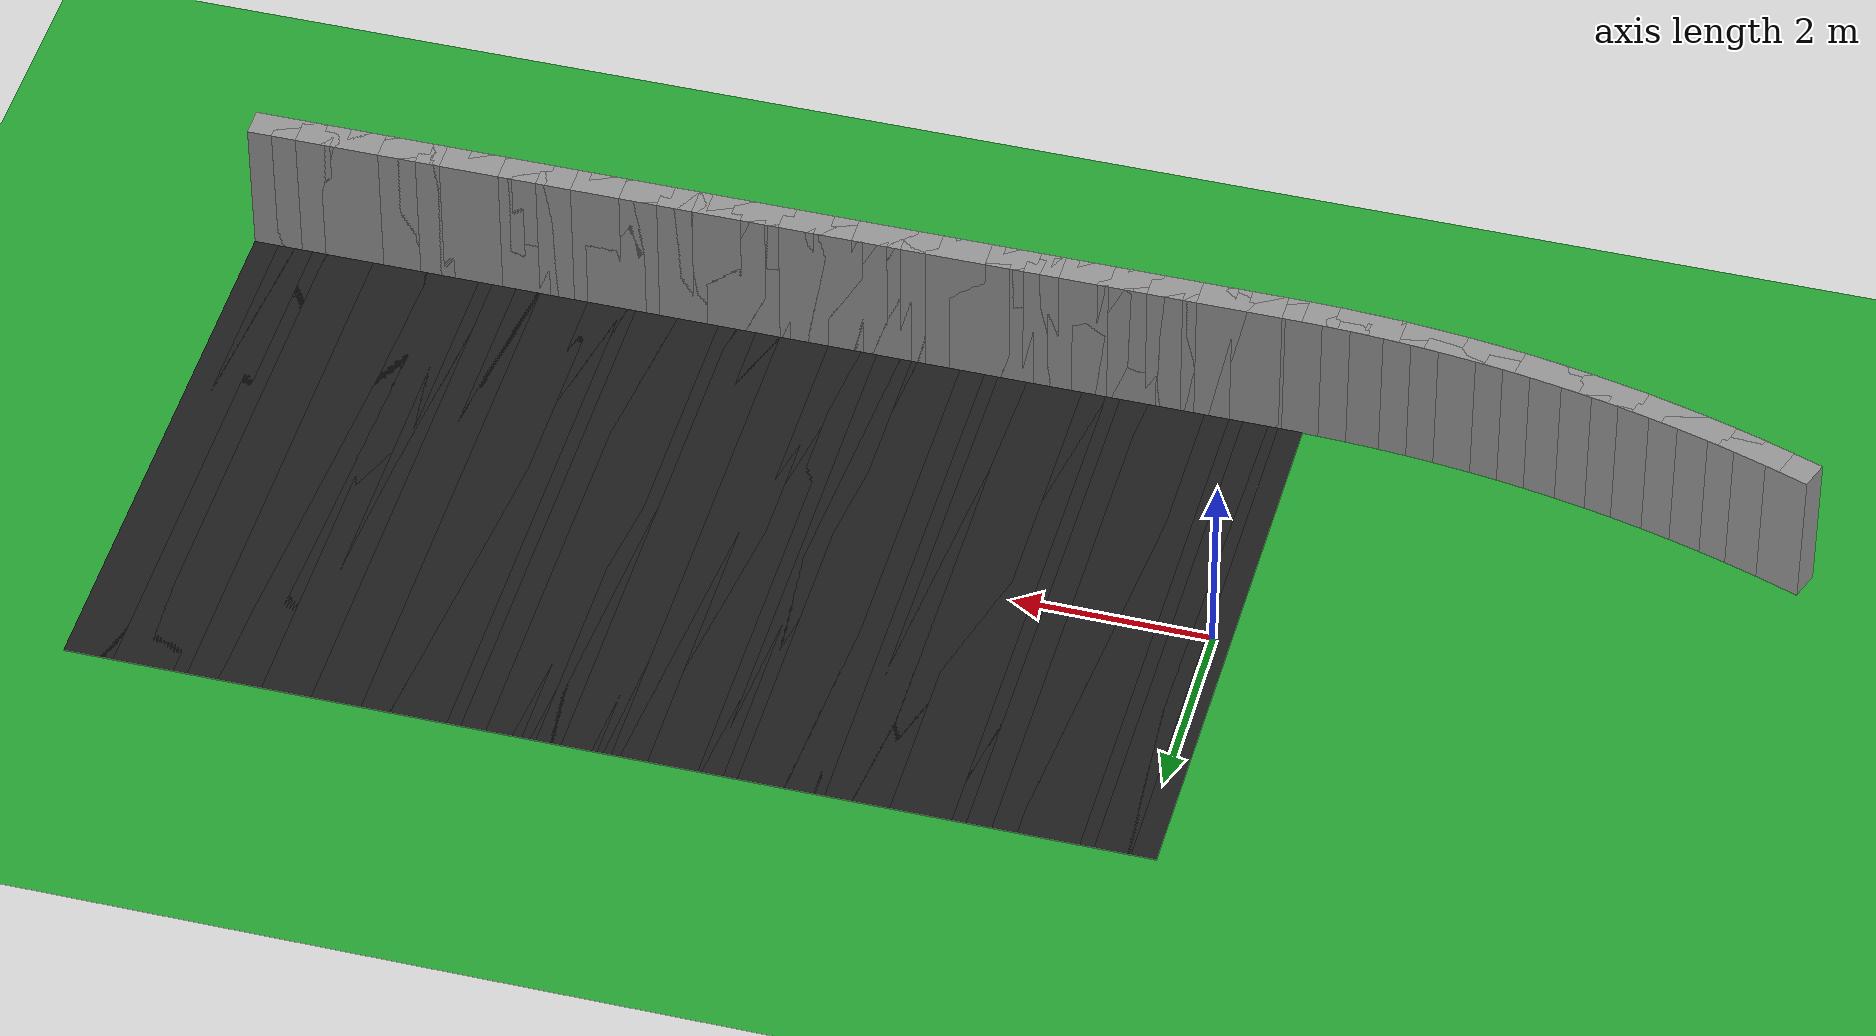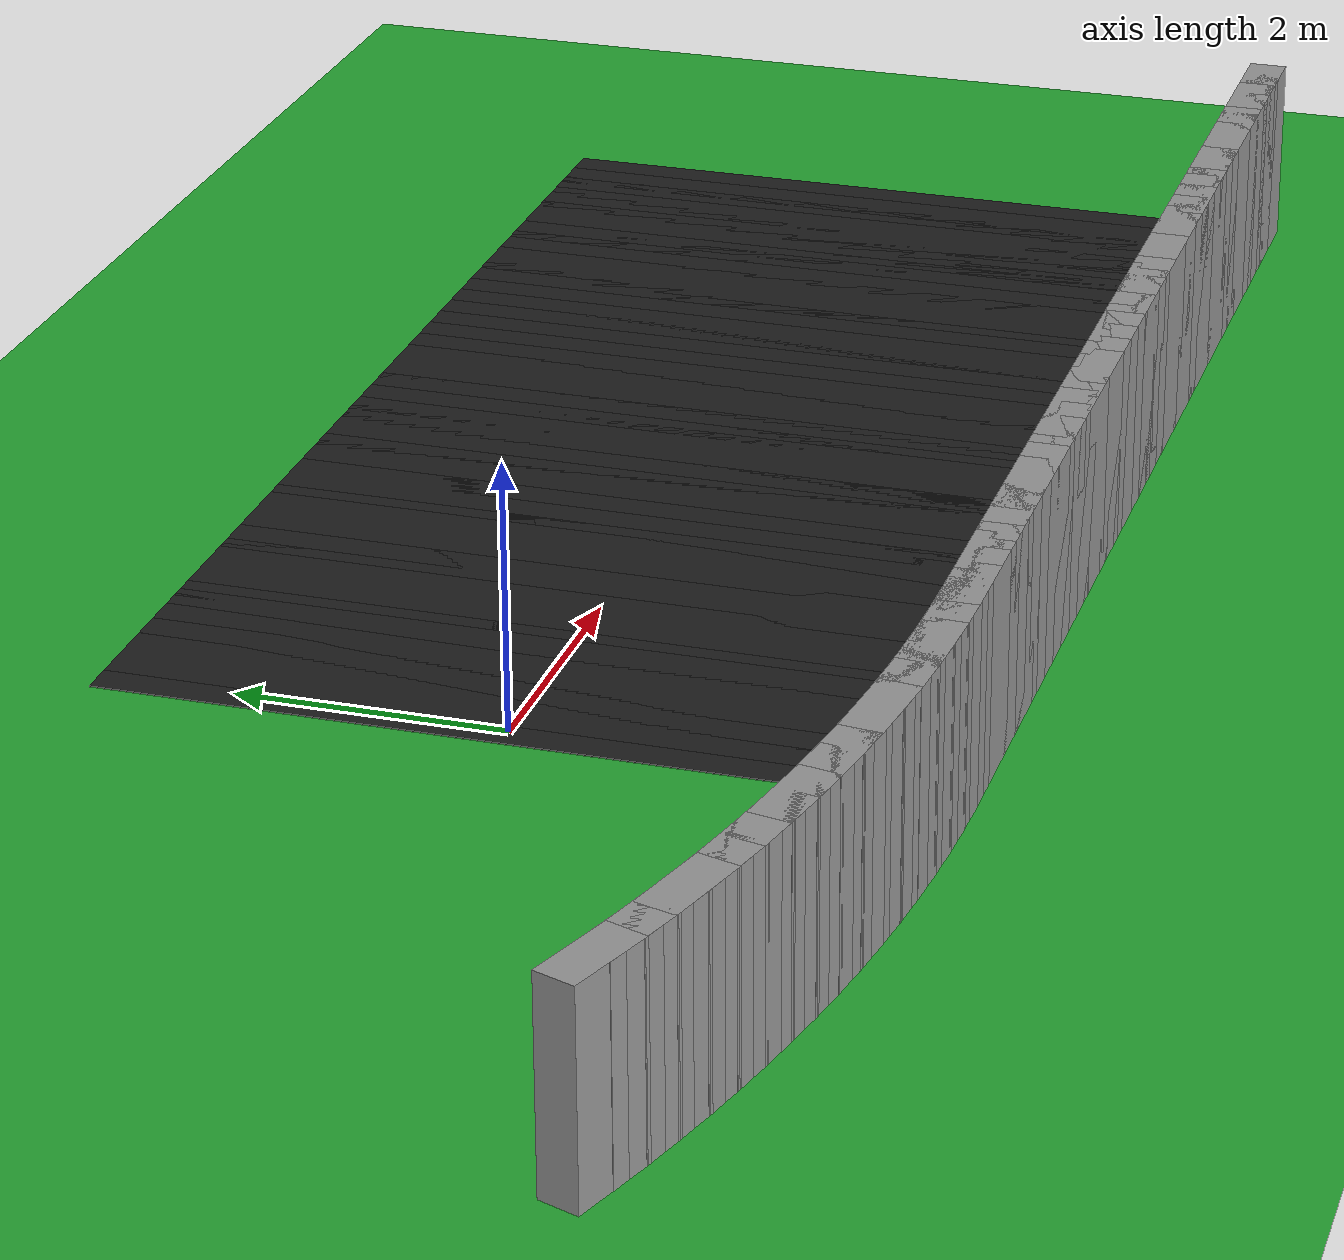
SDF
<sdf version="1.6">
 <world name="obstacle_asymturn">
  <include><uri>model://sun</uri></include>
  <model name="ground_plane">
   <static>true</static>
   <link name="link">
    <collision name="collision">
     <surface><friction><ode><mu>100</mu><mu2>50</mu2></ode></friction></surface>
     <geometry><plane><normal>0 0 1</normal><size>120 120</size></plane></geometry>
    </collision>
    <visual name="visual">
     <geometry><plane><normal>0 0 1</normal><size>120 120</size></plane></geometry>
     <material>
      <script><uri>file://media/materials/scripts/gazebo.material</uri><name>Gazebo/Green</name></script>
     </material>
    </visual>
   </link>
  </model>
  <model name="asphalt_0">
   <static>true</static>
   <pose>0.125 0.000 0.005 0 0 0.00000</pose>
   <link name="link">
    <visual name="visual">
     <geometry><box><size>0.610 6.000 0.010</size></box></geometry>
     <material>
      <script><uri>file://media/materials/scripts/gazebo.material</uri><name>Gazebo/Black</name></script>
     </material>
    </visual>
   </link>
  </model>
  <model name="curbR_0">
   <static>true</static>
   <pose>0.125 -3.150 0.750 0 0 0.00000</pose>
   <link name="link">
    <collision name="collision"><geometry><box><size>0.610 0.300 1.500</size></box></geometry></collision>
    <visual name="visual">
     <geometry><box><size>0.610 0.300 1.500</size></box></geometry>
     <material>
      <script><uri>file://media/materials/scripts/gazebo.material</uri><name>Gazebo/Grey</name></script>
     </material>
    </visual>
   </link>
  </model>
  <model name="asphalt_1">
   <static>true</static>
   <pose>0.375 0.000 0.005 0 0 0.00000</pose>
   <link name="link">
    <visual name="visual">
     <geometry><box><size>0.610 6.000 0.010</size></box></geometry>
     <material>
      <script><uri>file://media/materials/scripts/gazebo.material</uri><name>Gazebo/Black</name></script>
     </material>
    </visual>
   </link>
  </model>
  <model name="curbR_1">
   <static>true</static>
   <pose>0.375 -3.150 0.750 0 0 0.00000</pose>
   <link name="link">
    <collision name="collision"><geometry><box><size>0.610 0.300 1.500</size></box></geometry></collision>
    <visual name="visual">
     <geometry><box><size>0.610 0.300 1.500</size></box></geometry>
     <material>
      <script><uri>file://media/materials/scripts/gazebo.material</uri><name>Gazebo/Grey</name></script>
     </material>
    </visual>
   </link>
  </model>
  <model name="asphalt_2">
   <static>true</static>
   <pose>0.625 0.000 0.005 0 0 0.00000</pose>
   <link name="link">
    <visual name="visual">
     <geometry><box><size>0.610 6.000 0.010</size></box></geometry>
     <material>
      <script><uri>file://media/materials/scripts/gazebo.material</uri><name>Gazebo/Black</name></script>
     </material>
    </visual>
   </link>
  </model>
  <model name="curbR_2">
   <static>true</static>
   <pose>0.625 -3.150 0.750 0 0 0.00000</pose>
   <link name="link">
    <collision name="collision"><geometry><box><size>0.610 0.300 1.500</size></box></geometry></collision>
    <visual name="visual">
     <geometry><box><size>0.610 0.300 1.500</size></box></geometry>
     <material>
      <script><uri>file://media/materials/scripts/gazebo.material</uri><name>Gazebo/Grey</name></script>
     </material>
    </visual>
   </link>
  </model>
  <model name="asphalt_3">
   <static>true</static>
   <pose>0.875 0.000 0.005 0 0 0.00000</pose>
   <link name="link">
    <visual name="visual">
     <geometry><box><size>0.610 6.000 0.010</size></box></geometry>
     <material>
      <script><uri>file://media/materials/scripts/gazebo.material</uri><name>Gazebo/Black</name></script>
     </material>
    </visual>
   </link>
  </model>
  <model name="curbR_3">
   <static>true</static>
   <pose>0.875 -3.150 0.750 0 0 0.00000</pose>
   <link name="link">
    <collision name="collision"><geometry><box><size>0.610 0.300 1.500</size></box></geometry></collision>
    <visual name="visual">
     <geometry><box><size>0.610 0.300 1.500</size></box></geometry>
     <material>
      <script><uri>file://media/materials/scripts/gazebo.material</uri><name>Gazebo/Grey</name></script>
     </material>
    </visual>
   </link>
  </model>
  <model name="asphalt_4">
   <static>true</static>
   <pose>1.125 0.000 0.005 0 0 0.00000</pose>
   <link name="link">
    <visual name="visual">
     <geometry><box><size>0.610 6.000 0.010</size></box></geometry>
     <material>
      <script><uri>file://media/materials/scripts/gazebo.material</uri><name>Gazebo/Black</name></script>
     </material>
    </visual>
   </link>
  </model>
  <model name="curbR_4">
   <static>true</static>
   <pose>1.125 -3.150 0.750 0 0 0.00000</pose>
   <link name="link">
    <collision name="collision"><geometry><box><size>0.610 0.300 1.500</size></box></geometry></collision>
    <visual name="visual">
     <geometry><box><size>0.610 0.300 1.500</size></box></geometry>
     <material>
      <script><uri>file://media/materials/scripts/gazebo.material</uri><name>Gazebo/Grey</name></script>
     </material>
    </visual>
   </link>
  </model>
  <model name="asphalt_5">
   <static>true</static>
   <pose>1.375 0.000 0.005 0 0 0.00000</pose>
   <link name="link">
    <visual name="visual">
     <geometry><box><size>0.610 6.000 0.010</size></box></geometry>
     <material>
      <script><uri>file://media/materials/scripts/gazebo.material</uri><name>Gazebo/Black</name></script>
     </material>
    </visual>
   </link>
  </model>
  <model name="curbR_5">
   <static>true</static>
   <pose>1.375 -3.150 0.750 0 0 0.00000</pose>
   <link name="link">
    <collision name="collision"><geometry><box><size>0.610 0.300 1.500</size></box></geometry></collision>
    <visual name="visual">
     <geometry><box><size>0.610 0.300 1.500</size></box></geometry>
     <material>
      <script><uri>file://media/materials/scripts/gazebo.material</uri><name>Gazebo/Grey</name></script>
     </material>
    </visual>
   </link>
  </model>
  <model name="asphalt_6">
   <static>true</static>
   <pose>1.625 0.000 0.005 0 0 0.00000</pose>
   <link name="link">
    <visual name="visual">
     <geometry><box><size>0.610 6.000 0.010</size></box></geometry>
     <material>
      <script><uri>file://media/materials/scripts/gazebo.material</uri><name>Gazebo/Black</name></script>
     </material>
    </visual>
   </link>
  </model>
  <model name="curbR_6">
   <static>true</static>
   <pose>1.625 -3.150 0.750 0 0 0.00000</pose>
   <link name="link">
    <collision name="collision"><geometry><box><size>0.610 0.300 1.500</size></box></geometry></collision>
    <visual name="visual">
     <geometry><box><size>0.610 0.300 1.500</size></box></geometry>
     <material>
      <script><uri>file://media/materials/scripts/gazebo.material</uri><name>Gazebo/Grey</name></script>
     </material>
    </visual>
   </link>
  </model>
  <model name="asphalt_7">
   <static>true</static>
   <pose>1.875 0.000 0.005 0 0 0.00000</pose>
   <link name="link">
    <visual name="visual">
     <geometry><box><size>0.610 6.000 0.010</size></box></geometry>
     <material>
      <script><uri>file://media/materials/scripts/gazebo.material</uri><name>Gazebo/Black</name></script>
     </material>
    </visual>
   </link>
  </model>
  <model name="curbR_7">
   <static>true</static>
   <pose>1.875 -3.150 0.750 0 0 0.00000</pose>
   <link name="link">
    <collision name="collision"><geometry><box><size>0.610 0.300 1.500</size></box></geometry></collision>
    <visual name="visual">
     <geometry><box><size>0.610 0.300 1.500</size></box></geometry>
     <material>
      <script><uri>file://media/materials/scripts/gazebo.material</uri><name>Gazebo/Grey</name></script>
     </material>
    </visual>
   </link>
  </model>
  <model name="asphalt_8">
   <static>true</static>
   <pose>2.125 0.000 0.005 0 0 0.00000</pose>
   <link name="link">
    <visual name="visual">
     <geometry><box><size>0.610 6.000 0.010</size></box></geometry>
     <material>
      <script><uri>file://media/materials/scripts/gazebo.material</uri><name>Gazebo/Black</name></script>
     </material>
    </visual>
   </link>
  </model>
  <model name="curbR_8">
   <static>true</static>
   <pose>2.125 -3.150 0.750 0 0 0.00000</pose>
   <link name="link">
    <collision name="collision"><geometry><box><size>0.610 0.300 1.500</size></box></geometry></collision>
    <visual name="visual">
     <geometry><box><size>0.610 0.300 1.500</size></box></geometry>
     <material>
      <script><uri>file://media/materials/scripts/gazebo.material</uri><name>Gazebo/Grey</name></script>
     </material>
    </visual>
   </link>
  </model>
  <model name="asphalt_9">
   <static>true</static>
   <pose>2.375 0.000 0.005 0 0 0.00000</pose>
   <link name="link">
    <visual name="visual">
     <geometry><box><size>0.610 6.000 0.010</size></box></geometry>
     <material>
      <script><uri>file://media/materials/scripts/gazebo.material</uri><name>Gazebo/Black</name></script>
     </material>
    </visual>
   </link>
  </model>
  <model name="curbR_9">
   <static>true</static>
   <pose>2.375 -3.150 0.750 0 0 0.00000</pose>
   <link name="link">
    <collision name="collision"><geometry><box><size>0.610 0.300 1.500</size></box></geometry></collision>
    <visual name="visual">
     <geometry><box><size>0.610 0.300 1.500</size></box></geometry>
     <material>
      <script><uri>file://media/materials/scripts/gazebo.material</uri><name>Gazebo/Grey</name></script>
     </material>
    </visual>
   </link>
  </model>
  <model name="asphalt_10">
   <static>true</static>
   <pose>2.625 0.000 0.005 0 0 0.00000</pose>
   <link name="link">
    <visual name="visual">
     <geometry><box><size>0.610 6.000 0.010</size></box></geometry>
     <material>
      <script><uri>file://media/materials/scripts/gazebo.material</uri><name>Gazebo/Black</name></script>
     </material>
    </visual>
   </link>
  </model>
  <model name="curbR_10">
   <static>true</static>
   <pose>2.625 -3.150 0.750 0 0 0.00000</pose>
   <link name="link">
    <collision name="collision"><geometry><box><size>0.610 0.300 1.500</size></box></geometry></collision>
    <visual name="visual">
     <geometry><box><size>0.610 0.300 1.500</size></box></geometry>
     <material>
      <script><uri>file://media/materials/scripts/gazebo.material</uri><name>Gazebo/Grey</name></script>
     </material>
    </visual>
   </link>
  </model>
  <model name="asphalt_11">
   <static>true</static>
   <pose>2.875 0.000 0.005 0 0 0.00000</pose>
   <link name="link">
    <visual name="visual">
     <geometry><box><size>0.610 6.000 0.010</size></box></geometry>
     <material>
      <script><uri>file://media/materials/scripts/gazebo.material</uri><name>Gazebo/Black</name></script>
     </material>
    </visual>
   </link>
  </model>
  <model name="curbR_11">
   <static>true</static>
   <pose>2.875 -3.150 0.750 0 0 0.00000</pose>
   <link name="link">
    <collision name="collision"><geometry><box><size>0.610 0.300 1.500</size></box></geometry></collision>
    <visual name="visual">
     <geometry><box><size>0.610 0.300 1.500</size></box></geometry>
     <material>
      <script><uri>file://media/materials/scripts/gazebo.material</uri><name>Gazebo/Grey</name></script>
     </material>
    </visual>
   </link>
  </model>
  <model name="asphalt_12">
   <static>true</static>
   <pose>3.125 0.000 0.005 0 0 0.00000</pose>
   <link name="link">
    <visual name="visual">
     <geometry><box><size>0.610 6.000 0.010</size></box></geometry>
     <material>
      <script><uri>file://media/materials/scripts/gazebo.material</uri><name>Gazebo/Black</name></script>
     </material>
    </visual>
   </link>
  </model>
  <model name="curbR_12">
   <static>true</static>
   <pose>3.125 -3.150 0.750 0 0 0.00000</pose>
   <link name="link">
    <collision name="collision"><geometry><box><size>0.610 0.300 1.500</size></box></geometry></collision>
    <visual name="visual">
     <geometry><box><size>0.610 0.300 1.500</size></box></geometry>
     <material>
      <script><uri>file://media/materials/scripts/gazebo.material</uri><name>Gazebo/Grey</name></script>
     </material>
    </visual>
   </link>
  </model>
  <model name="asphalt_13">
   <static>true</static>
   <pose>3.375 0.000 0.005 0 0 0.00000</pose>
   <link name="link">
    <visual name="visual">
     <geometry><box><size>0.610 6.000 0.010</size></box></geometry>
     <material>
      <script><uri>file://media/materials/scripts/gazebo.material</uri><name>Gazebo/Black</name></script>
     </material>
    </visual>
   </link>
  </model>
  <model name="curbR_13">
   <static>true</static>
   <pose>3.375 -3.150 0.750 0 0 0.00000</pose>
   <link name="link">
    <collision name="collision"><geometry><box><size>0.610 0.300 1.500</size></box></geometry></collision>
    <visual name="visual">
     <geometry><box><size>0.610 0.300 1.500</size></box></geometry>
     <material>
      <script><uri>file://media/materials/scripts/gazebo.material</uri><name>Gazebo/Grey</name></script>
     </material>
    </visual>
   </link>
  </model>
  <model name="asphalt_14">
   <static>true</static>
   <pose>3.625 0.000 0.005 0 0 0.00000</pose>
   <link name="link">
    <visual name="visual">
     <geometry><box><size>0.610 6.000 0.010</size></box></geometry>
     <material>
      <script><uri>file://media/materials/scripts/gazebo.material</uri><name>Gazebo/Black</name></script>
     </material>
    </visual>
   </link>
  </model>
  <model name="curbR_14">
   <static>true</static>
   <pose>3.625 -3.150 0.750 0 0 0.00000</pose>
   <link name="link">
    <collision name="collision"><geometry><box><size>0.610 0.300 1.500</size></box></geometry></collision>
    <visual name="visual">
     <geometry><box><size>0.610 0.300 1.500</size></box></geometry>
     <material>
      <script><uri>file://media/materials/scripts/gazebo.material</uri><name>Gazebo/Grey</name></script>
     </material>
    </visual>
   </link>
  </model>
  <model name="asphalt_15">
   <static>true</static>
   <pose>3.875 0.000 0.005 0 0 0.00000</pose>
   <link name="link">
    <visual name="visual">
     <geometry><box><size>0.610 6.000 0.010</size></box></geometry>
     <material>
      <script><uri>file://media/materials/scripts/gazebo.material</uri><name>Gazebo/Black</name></script>
     </material>
    </visual>
   </link>
  </model>
  <model name="curbR_15">
   <static>true</static>
   <pose>3.875 -3.150 0.750 0 0 0.00000</pose>
   <link name="link">
    <collision name="collision"><geometry><box><size>0.610 0.300 1.500</size></box></geometry></collision>
    <visual name="visual">
     <geometry><box><size>0.610 0.300 1.500</size></box></geometry>
     <material>
      <script><uri>file://media/materials/scripts/gazebo.material</uri><name>Gazebo/Grey</name></script>
     </material>
    </visual>
   </link>
  </model>
  <model name="asphalt_16">
   <static>true</static>
   <pose>4.125 0.000 0.005 0 0 0.00000</pose>
   <link name="link">
    <visual name="visual">
     <geometry><box><size>0.610 6.000 0.010</size></box></geometry>
     <material>
      <script><uri>file://media/materials/scripts/gazebo.material</uri><name>Gazebo/Black</name></script>
     </material>
    </visual>
   </link>
  </model>
  <model name="curbR_16">
   <static>true</static>
   <pose>4.125 -3.150 0.750 0 0 0.00000</pose>
   <link name="link">
    <collision name="collision"><geometry><box><size>0.610 0.300 1.500</size></box></geometry></collision>
    <visual name="visual">
     <geometry><box><size>0.610 0.300 1.500</size></box></geometry>
     <material>
      <script><uri>file://media/materials/scripts/gazebo.material</uri><name>Gazebo/Grey</name></script>
     </material>
    </visual>
   </link>
  </model>
  <model name="asphalt_17">
   <static>true</static>
   <pose>4.375 0.000 0.005 0 0 0.00000</pose>
   <link name="link">
    <visual name="visual">
     <geometry><box><size>0.610 6.000 0.010</size></box></geometry>
     <material>
      <script><uri>file://media/materials/scripts/gazebo.material</uri><name>Gazebo/Black</name></script>
     </material>
    </visual>
   </link>
  </model>
  <model name="curbR_17">
   <static>true</static>
   <pose>4.375 -3.150 0.750 0 0 0.00000</pose>
   <link name="link">
    <collision name="collision"><geometry><box><size>0.610 0.300 1.500</size></box></geometry></collision>
    <visual name="visual">
     <geometry><box><size>0.610 0.300 1.500</size></box></geometry>
     <material>
      <script><uri>file://media/materials/scripts/gazebo.material</uri><name>Gazebo/Grey</name></script>
     </material>
    </visual>
   </link>
  </model>
  <model name="asphalt_18">
   <static>true</static>
   <pose>4.625 0.000 0.005 0 0 0.00000</pose>
   <link name="link">
    <visual name="visual">
     <geometry><box><size>0.610 6.000 0.010</size></box></geometry>
     <material>
      <script><uri>file://media/materials/scripts/gazebo.material</uri><name>Gazebo/Black</name></script>
     </material>
    </visual>
   </link>
  </model>
  <model name="curbR_18">
   <static>true</static>
   <pose>4.625 -3.150 0.750 0 0 0.00000</pose>
   <link name="link">
    <collision name="collision"><geometry><box><size>0.610 0.300 1.500</size></box></geometry></collision>
    <visual name="visual">
     <geometry><box><size>0.610 0.300 1.500</size></box></geometry>
     <material>
      <script><uri>file://media/materials/scripts/gazebo.material</uri><name>Gazebo/Grey</name></script>
     </material>
    </visual>
   </link>
  </model>
  <model name="asphalt_19">
   <static>true</static>
   <pose>4.875 0.000 0.005 0 0 0.00000</pose>
   <link name="link">
    <visual name="visual">
     <geometry><box><size>0.610 6.000 0.010</size></box></geometry>
     <material>
      <script><uri>file://media/materials/scripts/gazebo.material</uri><name>Gazebo/Black</name></script>
     </material>
    </visual>
   </link>
  </model>
  <model name="curbR_19">
   <static>true</static>
   <pose>4.875 -3.150 0.750 0 0 0.00000</pose>
   <link name="link">
    <collision name="collision"><geometry><box><size>0.610 0.300 1.500</size></box></geometry></collision>
    <visual name="visual">
     <geometry><box><size>0.610 0.300 1.500</size></box></geometry>
     <material>
      <script><uri>file://media/materials/scripts/gazebo.material</uri><name>Gazebo/Grey</name></script>
     </material>
    </visual>
   </link>
  </model>
  <model name="asphalt_20">
   <static>true</static>
   <pose>5.125 0.000 0.005 0 0 0.00000</pose>
   <link name="link">
    <visual name="visual">
     <geometry><box><size>0.610 6.000 0.010</size></box></geometry>
     <material>
      <script><uri>file://media/materials/scripts/gazebo.material</uri><name>Gazebo/Black</name></script>
     </material>
    </visual>
   </link>
  </model>
  <model name="curbR_20">
   <static>true</static>
   <pose>5.125 -3.150 0.750 0 0 0.00000</pose>
   <link name="link">
    <collision name="collision"><geometry><box><size>0.610 0.300 1.500</size></box></geometry></collision>
    <visual name="visual">
     <geometry><box><size>0.610 0.300 1.500</size></box></geometry>
     <material>
      <script><uri>file://media/materials/scripts/gazebo.material</uri><name>Gazebo/Grey</name></script>
     </material>
    </visual>
   </link>
  </model>
  <model name="asphalt_21">
   <static>true</static>
   <pose>5.375 0.000 0.005 0 0 0.00000</pose>
   <link name="link">
    <visual name="visual">
     <geometry><box><size>0.610 6.000 0.010</size></box></geometry>
     <material>
      <script><uri>file://media/materials/scripts/gazebo.material</uri><name>Gazebo/Black</name></script>
     </material>
    </visual>
   </link>
  </model>
  <model name="curbR_21">
   <static>true</static>
   <pose>5.375 -3.150 0.750 0 0 0.00000</pose>
   <link name="link">
    <collision name="collision"><geometry><box><size>0.610 0.300 1.500</size></box></geometry></collision>
    <visual name="visual">
     <geometry><box><size>0.610 0.300 1.500</size></box></geometry>
     <material>
      <script><uri>file://media/materials/scripts/gazebo.material</uri><name>Gazebo/Grey</name></script>
     </material>
    </visual>
   </link>
  </model>
  <model name="asphalt_22">
   <static>true</static>
   <pose>5.625 0.000 0.005 0 0 0.00000</pose>
   <link name="link">
    <visual name="visual">
     <geometry><box><size>0.610 6.000 0.010</size></box></geometry>
     <material>
      <script><uri>file://media/materials/scripts/gazebo.material</uri><name>Gazebo/Black</name></script>
     </material>
    </visual>
   </link>
  </model>
  <model name="curbR_22">
   <static>true</static>
   <pose>5.625 -3.150 0.750 0 0 0.00000</pose>
   <link name="link">
    <collision name="collision"><geometry><box><size>0.610 0.300 1.500</size></box></geometry></collision>
    <visual name="visual">
     <geometry><box><size>0.610 0.300 1.500</size></box></geometry>
     <material>
      <script><uri>file://media/materials/scripts/gazebo.material</uri><name>Gazebo/Grey</name></script>
     </material>
    </visual>
   </link>
  </model>
  <model name="asphalt_23">
   <static>true</static>
   <pose>5.875 0.000 0.005 0 0 0.00000</pose>
   <link name="link">
    <visual name="visual">
     <geometry><box><size>0.610 6.000 0.010</size></box></geometry>
     <material>
      <script><uri>file://media/materials/scripts/gazebo.material</uri><name>Gazebo/Black</name></script>
     </material>
    </visual>
   </link>
  </model>
  <model name="curbR_23">
   <static>true</static>
   <pose>5.875 -3.150 0.750 0 0 0.00000</pose>
   <link name="link">
    <collision name="collision"><geometry><box><size>0.610 0.300 1.500</size></box></geometry></collision>
    <visual name="visual">
     <geometry><box><size>0.610 0.300 1.500</size></box></geometry>
     <material>
      <script><uri>file://media/materials/scripts/gazebo.material</uri><name>Gazebo/Grey</name></script>
     </material>
    </visual>
   </link>
  </model>
  <model name="asphalt_24">
   <static>true</static>
   <pose>6.125 0.000 0.005 0 0 0.00000</pose>
   <link name="link">
    <visual name="visual">
     <geometry><box><size>0.610 6.000 0.010</size></box></geometry>
     <material>
      <script><uri>file://media/materials/scripts/gazebo.material</uri><name>Gazebo/Black</name></script>
     </material>
    </visual>
   </link>
  </model>
  <model name="curbR_24">
   <static>true</static>
   <pose>6.125 -3.150 0.750 0 0 0.00000</pose>
   <link name="link">
    <collision name="collision"><geometry><box><size>0.610 0.300 1.500</size></box></geometry></collision>
    <visual name="visual">
     <geometry><box><size>0.610 0.300 1.500</size></box></geometry>
     <material>
      <script><uri>file://media/materials/scripts/gazebo.material</uri><name>Gazebo/Grey</name></script>
     </material>
    </visual>
   </link>
  </model>
  <model name="asphalt_25">
   <static>true</static>
   <pose>6.375 0.000 0.005 0 0 0.00000</pose>
   <link name="link">
    <visual name="visual">
     <geometry><box><size>0.610 6.000 0.010</size></box></geometry>
     <material>
      <script><uri>file://media/materials/scripts/gazebo.material</uri><name>Gazebo/Black</name></script>
     </material>
    </visual>
   </link>
  </model>
  <model name="curbR_25">
   <static>true</static>
   <pose>6.375 -3.150 0.750 0 0 0.00000</pose>
   <link name="link">
    <collision name="collision"><geometry><box><size>0.610 0.300 1.500</size></box></geometry></collision>
    <visual name="visual">
     <geometry><box><size>0.610 0.300 1.500</size></box></geometry>
     <material>
      <script><uri>file://media/materials/scripts/gazebo.material</uri><name>Gazebo/Grey</name></script>
     </material>
    </visual>
   </link>
  </model>
  <model name="asphalt_26">
   <static>true</static>
   <pose>6.625 0.000 0.005 0 0 0.00000</pose>
   <link name="link">
    <visual name="visual">
     <geometry><box><size>0.610 6.000 0.010</size></box></geometry>
     <material>
      <script><uri>file://media/materials/scripts/gazebo.material</uri><name>Gazebo/Black</name></script>
     </material>
    </visual>
   </link>
  </model>
  <model name="curbR_26">
   <static>true</static>
   <pose>6.625 -3.150 0.750 0 0 0.00000</pose>
   <link name="link">
    <collision name="collision"><geometry><box><size>0.610 0.300 1.500</size></box></geometry></collision>
    <visual name="visual">
     <geometry><box><size>0.610 0.300 1.500</size></box></geometry>
     <material>
      <script><uri>file://media/materials/scripts/gazebo.material</uri><name>Gazebo/Grey</name></script>
     </material>
    </visual>
   </link>
  </model>
  <model name="asphalt_27">
   <static>true</static>
   <pose>6.875 0.000 0.005 0 0 0.00000</pose>
   <link name="link">
    <visual name="visual">
     <geometry><box><size>0.610 6.000 0.010</size></box></geometry>
     <material>
      <script><uri>file://media/materials/scripts/gazebo.material</uri><name>Gazebo/Black</name></script>
     </material>
    </visual>
   </link>
  </model>
  <model name="curbR_27">
   <static>true</static>
   <pose>6.875 -3.150 0.750 0 0 0.00000</pose>
   <link name="link">
    <collision name="collision"><geometry><box><size>0.610 0.300 1.500</size></box></geometry></collision>
    <visual name="visual">
     <geometry><box><size>0.610 0.300 1.500</size></box></geometry>
     <material>
      <script><uri>file://media/materials/scripts/gazebo.material</uri><name>Gazebo/Grey</name></script>
     </material>
    </visual>
   </link>
  </model>
  <model name="asphalt_28">
   <static>true</static>
   <pose>7.125 0.000 0.005 0 0 0.00000</pose>
   <link name="link">
    <visual name="visual">
     <geometry><box><size>0.610 6.000 0.010</size></box></geometry>
     <material>
      <script><uri>file://media/materials/scripts/gazebo.material</uri><name>Gazebo/Black</name></script>
     </material>
    </visual>
   </link>
  </model>
  <model name="curbR_28">
   <static>true</static>
   <pose>7.125 -3.150 0.750 0 0 0.00000</pose>
   <link name="link">
    <collision name="collision"><geometry><box><size>0.610 0.300 1.500</size></box></geometry></collision>
    <visual name="visual">
     <geometry><box><size>0.610 0.300 1.500</size></box></geometry>
     <material>
      <script><uri>file://media/materials/scripts/gazebo.material</uri><name>Gazebo/Grey</name></script>
     </material>
    </visual>
   </link>
  </model>
  <model name="asphalt_29">
   <static>true</static>
   <pose>7.375 0.000 0.005 0 0 0.00000</pose>
   <link name="link">
    <visual name="visual">
     <geometry><box><size>0.610 6.000 0.010</size></box></geometry>
     <material>
      <script><uri>file://media/materials/scripts/gazebo.material</uri><name>Gazebo/Black</name></script>
     </material>
    </visual>
   </link>
  </model>
  <model name="curbR_29">
   <static>true</static>
   <pose>7.375 -3.150 0.750 0 0 0.00000</pose>
   <link name="link">
    <collision name="collision"><geometry><box><size>0.610 0.300 1.500</size></box></geometry></collision>
    <visual name="visual">
     <geometry><box><size>0.610 0.300 1.500</size></box></geometry>
     <material>
      <script><uri>file://media/materials/scripts/gazebo.material</uri><name>Gazebo/Grey</name></script>
     </material>
    </visual>
   </link>
  </model>
  <model name="asphalt_30">
   <static>true</static>
   <pose>7.625 0.000 0.005 0 0 0.00000</pose>
   <link name="link">
    <visual name="visual">
     <geometry><box><size>0.610 6.000 0.010</size></box></geometry>
     <material>
      <script><uri>file://media/materials/scripts/gazebo.material</uri><name>Gazebo/Black</name></script>
     </material>
    </visual>
   </link>
  </model>
  <model name="curbR_30">
   <static>true</static>
   <pose>7.625 -3.150 0.750 0 0 0.00000</pose>
   <link name="link">
    <collision name="collision"><geometry><box><size>0.610 0.300 1.500</size></box></geometry></collision>
    <visual name="visual">
     <geometry><box><size>0.610 0.300 1.500</size></box></geometry>
     <material>
      <script><uri>file://media/materials/scripts/gazebo.material</uri><name>Gazebo/Grey</name></script>
     </material>
    </visual>
   </link>
  </model>
  <model name="asphalt_31">
   <static>true</static>
   <pose>7.875 0.000 0.005 0 0 0.00000</pose>
   <link name="link">
    <visual name="visual">
     <geometry><box><size>0.610 6.000 0.010</size></box></geometry>
     <material>
      <script><uri>file://media/materials/scripts/gazebo.material</uri><name>Gazebo/Black</name></script>
     </material>
    </visual>
   </link>
  </model>
  <model name="curbR_31">
   <static>true</static>
   <pose>7.875 -3.150 0.750 0 0 0.00000</pose>
   <link name="link">
    <collision name="collision"><geometry><box><size>0.610 0.300 1.500</size></box></geometry></collision>
    <visual name="visual">
     <geometry><box><size>0.610 0.300 1.500</size></box></geometry>
     <material>
      <script><uri>file://media/materials/scripts/gazebo.material</uri><name>Gazebo/Grey</name></script>
     </material>
    </visual>
   </link>
  </model>
  <model name="asphalt_32">
   <static>true</static>
   <pose>8.125 0.000 0.005 0 0 0.00000</pose>
   <link name="link">
    <visual name="visual">
     <geometry><box><size>0.610 6.000 0.010</size></box></geometry>
     <material>
      <script><uri>file://media/materials/scripts/gazebo.material</uri><name>Gazebo/Black</name></script>
     </material>
    </visual>
   </link>
  </model>
  <model name="curbR_32">
   <static>true</static>
   <pose>8.125 -3.150 0.750 0 0 0.00000</pose>
   <link name="link">
    <collision name="collision"><geometry><box><size>0.610 0.300 1.500</size></box></geometry></collision>
    <visual name="visual">
     <geometry><box><size>0.610 0.300 1.500</size></box></geometry>
     <material>
      <script><uri>file://media/materials/scripts/gazebo.material</uri><name>Gazebo/Grey</name></script>
     </material>
    </visual>
   </link>
  </model>
  <model name="asphalt_33">
   <static>true</static>
   <pose>8.375 0.000 0.005 0 0 0.00000</pose>
   <link name="link">
    <visual name="visual">
     <geometry><box><size>0.610 6.000 0.010</size></box></geometry>
     <material>
      <script><uri>file://media/materials/scripts/gazebo.material</uri><name>Gazebo/Black</name></script>
     </material>
    </visual>
   </link>
  </model>
  <model name="curbR_33">
   <static>true</static>
   <pose>8.375 -3.150 0.750 0 0 0.00000</pose>
   <link name="link">
    <collision name="collision"><geometry><box><size>0.610 0.300 1.500</size></box></geometry></collision>
    <visual name="visual">
     <geometry><box><size>0.610 0.300 1.500</size></box></geometry>
     <material>
      <script><uri>file://media/materials/scripts/gazebo.material</uri><name>Gazebo/Grey</name></script>
     </material>
    </visual>
   </link>
  </model>
  <model name="asphalt_34">
   <static>true</static>
   <pose>8.625 0.000 0.005 0 0 0.00000</pose>
   <link name="link">
    <visual name="visual">
     <geometry><box><size>0.610 6.000 0.010</size></box></geometry>
     <material>
      <script><uri>file://media/materials/scripts/gazebo.material</uri><name>Gazebo/Black</name></script>
     </material>
    </visual>
   </link>
  </model>
  <model name="curbR_34">
   <static>true</static>
   <pose>8.625 -3.150 0.750 0 0 0.00000</pose>
   <link name="link">
    <collision name="collision"><geometry><box><size>0.610 0.300 1.500</size></box></geometry></collision>
    <visual name="visual">
     <geometry><box><size>0.610 0.300 1.500</size></box></geometry>
     <material>
      <script><uri>file://media/materials/scripts/gazebo.material</uri><name>Gazebo/Grey</name></script>
     </material>
    </visual>
   </link>
  </model>
  <model name="asphalt_35">
   <static>true</static>
   <pose>8.875 0.000 0.005 0 0 0.00000</pose>
   <link name="link">
    <visual name="visual">
     <geometry><box><size>0.610 6.000 0.010</size></box></geometry>
     <material>
      <script><uri>file://media/materials/scripts/gazebo.material</uri><name>Gazebo/Black</name></script>
     </material>
    </visual>
   </link>
  </model>
  <model name="curbR_35">
   <static>true</static>
   <pose>8.875 -3.150 0.750 0 0 0.00000</pose>
   <link name="link">
    <collision name="collision"><geometry><box><size>0.610 0.300 1.500</size></box></geometry></collision>
    <visual name="visual">
     <geometry><box><size>0.610 0.300 1.500</size></box></geometry>
     <material>
      <script><uri>file://media/materials/scripts/gazebo.material</uri><name>Gazebo/Grey</name></script>
     </material>
    </visual>
   </link>
  </model>
  <model name="asphalt_36">
   <static>true</static>
   <pose>9.125 0.000 0.005 0 0 0.00000</pose>
   <link name="link">
    <visual name="visual">
     <geometry><box><size>0.610 6.000 0.010</size></box></geometry>
     <material>
      <script><uri>file://media/materials/scripts/gazebo.material</uri><name>Gazebo/Black</name></script>
     </material>
    </visual>
   </link>
  </model>
  <model name="curbR_36">
   <static>true</static>
   <pose>9.125 -3.150 0.750 0 0 0.00000</pose>
   <link name="link">
    <collision name="collision"><geometry><box><size>0.610 0.300 1.500</size></box></geometry></collision>
    <visual name="visual">
     <geometry><box><size>0.610 0.300 1.500</size></box></geometry>
     <material>
      <script><uri>file://media/materials/scripts/gazebo.material</uri><name>Gazebo/Grey</name></script>
     </material>
    </visual>
   </link>
  </model>
  <model name="asphalt_37">
   <static>true</static>
   <pose>9.375 0.000 0.005 0 0 0.00000</pose>
   <link name="link">
    <visual name="visual">
     <geometry><box><size>0.610 6.000 0.010</size></box></geometry>
     <material>
      <script><uri>file://media/materials/scripts/gazebo.material</uri><name>Gazebo/Black</name></script>
     </material>
    </visual>
   </link>
  </model>
  <model name="curbR_37">
   <static>true</static>
   <pose>9.375 -3.150 0.750 0 0 0.00000</pose>
   <link name="link">
    <collision name="collision"><geometry><box><size>0.610 0.300 1.500</size></box></geometry></collision>
    <visual name="visual">
     <geometry><box><size>0.610 0.300 1.500</size></box></geometry>
     <material>
      <script><uri>file://media/materials/scripts/gazebo.material</uri><name>Gazebo/Grey</name></script>
     </material>
    </visual>
   </link>
  </model>
  <model name="asphalt_38">
   <static>true</static>
   <pose>9.625 0.000 0.005 0 0 0.00000</pose>
   <link name="link">
    <visual name="visual">
     <geometry><box><size>0.610 6.000 0.010</size></box></geometry>
     <material>
      <script><uri>file://media/materials/scripts/gazebo.material</uri><name>Gazebo/Black</name></script>
     </material>
    </visual>
   </link>
  </model>
  <model name="curbR_38">
   <static>true</static>
   <pose>9.625 -3.150 0.750 0 0 0.00000</pose>
   <link name="link">
    <collision name="collision"><geometry><box><size>0.610 0.300 1.500</size></box></geometry></collision>
    <visual name="visual">
     <geometry><box><size>0.610 0.300 1.500</size></box></geometry>
     <material>
      <script><uri>file://media/materials/scripts/gazebo.material</uri><name>Gazebo/Grey</name></script>
     </material>
    </visual>
   </link>
  </model>
  <model name="asphalt_39">
   <static>true</static>
   <pose>9.875 0.000 0.005 0 0 0.00000</pose>
   <link name="link">
    <visual name="visual">
     <geometry><box><size>0.610 6.000 0.010</size></box></geometry>
     <material>
      <script><uri>file://media/materials/scripts/gazebo.material</uri><name>Gazebo/Black</name></script>
     </material>
    </visual>
   </link>
  </model>
  <model name="curbR_39">
   <static>true</static>
   <pose>9.875 -3.150 0.750 0 0 0.00000</pose>
   <link name="link">
    <collision name="collision"><geometry><box><size>0.610 0.300 1.500</size></box></geometry></collision>
    <visual name="visual">
     <geometry><box><size>0.610 0.300 1.500</size></box></geometry>
     <material>
      <script><uri>file://media/materials/scripts/gazebo.material</uri><name>Gazebo/Grey</name></script>
     </material>
    </visual>
   </link>
  </model>
  <model name="asphalt_40">
   <static>true</static>
   <pose>10.125 0.000 0.005 0 0 0.00000</pose>
   <link name="link">
    <visual name="visual">
     <geometry><box><size>0.610 6.000 0.010</size></box></geometry>
     <material>
      <script><uri>file://media/materials/scripts/gazebo.material</uri><name>Gazebo/Black</name></script>
     </material>
    </visual>
   </link>
  </model>
  <model name="curbR_40">
   <static>true</static>
   <pose>10.125 -3.150 0.750 0 0 0.00000</pose>
   <link name="link">
    <collision name="collision"><geometry><box><size>0.610 0.300 1.500</size></box></geometry></collision>
    <visual name="visual">
     <geometry><box><size>0.610 0.300 1.500</size></box></geometry>
     <material>
      <script><uri>file://media/materials/scripts/gazebo.material</uri><name>Gazebo/Grey</name></script>
     </material>
    </visual>
   </link>
  </model>
  <model name="asphalt_41">
   <static>true</static>
   <pose>10.375 0.000 0.005 0 0 0.00000</pose>
   <link name="link">
    <visual name="visual">
     <geometry><box><size>0.610 6.000 0.010</size></box></geometry>
     <material>
      <script><uri>file://media/materials/scripts/gazebo.material</uri><name>Gazebo/Black</name></script>
     </material>
    </visual>
   </link>
  </model>
  <model name="curbR_41">
   <static>true</static>
   <pose>10.375 -3.150 0.750 0 0 0.00000</pose>
   <link name="link">
    <collision name="collision"><geometry><box><size>0.610 0.300 1.500</size></box></geometry></collision>
    <visual name="visual">
     <geometry><box><size>0.610 0.300 1.500</size></box></geometry>
     <material>
      <script><uri>file://media/materials/scripts/gazebo.material</uri><name>Gazebo/Grey</name></script>
     </material>
    </visual>
   </link>
  </model>
  <model name="curbR_473">
   <static>true</static>
   <pose>-5.067 -2.277 0.750 0 0 -0.34103</pose>
   <link name="link">
    <collision name="collision"><geometry><box><size>0.673 0.300 1.500</size></box></geometry></collision>
    <visual name="visual">
     <geometry><box><size>0.673 0.300 1.500</size></box></geometry>
     <material>
      <script><uri>file://media/materials/scripts/gazebo.material</uri><name>Gazebo/Grey</name></script>
     </material>
    </visual>
   </link>
  </model>
  <model name="curbR_474">
   <static>true</static>
   <pose>-4.771 -2.378 0.750 0 0 -0.32036</pose>
   <link name="link">
    <collision name="collision"><geometry><box><size>0.673 0.300 1.500</size></box></geometry></collision>
    <visual name="visual">
     <geometry><box><size>0.673 0.300 1.500</size></box></geometry>
     <material>
      <script><uri>file://media/materials/scripts/gazebo.material</uri><name>Gazebo/Grey</name></script>
     </material>
    </visual>
   </link>
  </model>
  <model name="curbR_475">
   <static>true</static>
   <pose>-4.472 -2.474 0.750 0 0 -0.29969</pose>
   <link name="link">
    <collision name="collision"><geometry><box><size>0.673 0.300 1.500</size></box></geometry></collision>
    <visual name="visual">
     <geometry><box><size>0.673 0.300 1.500</size></box></geometry>
     <material>
      <script><uri>file://media/materials/scripts/gazebo.material</uri><name>Gazebo/Grey</name></script>
     </material>
    </visual>
   </link>
  </model>
  <model name="curbR_476">
   <static>true</static>
   <pose>-4.172 -2.563 0.750 0 0 -0.27902</pose>
   <link name="link">
    <collision name="collision"><geometry><box><size>0.673 0.300 1.500</size></box></geometry></collision>
    <visual name="visual">
     <geometry><box><size>0.673 0.300 1.500</size></box></geometry>
     <material>
      <script><uri>file://media/materials/scripts/gazebo.material</uri><name>Gazebo/Grey</name></script>
     </material>
    </visual>
   </link>
  </model>
  <model name="curbR_477">
   <static>true</static>
   <pose>-3.871 -2.646 0.750 0 0 -0.25835</pose>
   <link name="link">
    <collision name="collision"><geometry><box><size>0.673 0.300 1.500</size></box></geometry></collision>
    <visual name="visual">
     <geometry><box><size>0.673 0.300 1.500</size></box></geometry>
     <material>
      <script><uri>file://media/materials/scripts/gazebo.material</uri><name>Gazebo/Grey</name></script>
     </material>
    </visual>
   </link>
  </model>
  <model name="curbR_478">
   <static>true</static>
   <pose>-3.567 -2.723 0.750 0 0 -0.23769</pose>
   <link name="link">
    <collision name="collision"><geometry><box><size>0.673 0.300 1.500</size></box></geometry></collision>
    <visual name="visual">
     <geometry><box><size>0.673 0.300 1.500</size></box></geometry>
     <material>
      <script><uri>file://media/materials/scripts/gazebo.material</uri><name>Gazebo/Grey</name></script>
     </material>
    </visual>
   </link>
  </model>
  <model name="curbR_479">
   <static>true</static>
   <pose>-3.262 -2.794 0.750 0 0 -0.21702</pose>
   <link name="link">
    <collision name="collision"><geometry><box><size>0.673 0.300 1.500</size></box></geometry></collision>
    <visual name="visual">
     <geometry><box><size>0.673 0.300 1.500</size></box></geometry>
     <material>
      <script><uri>file://media/materials/scripts/gazebo.material</uri><name>Gazebo/Grey</name></script>
     </material>
    </visual>
   </link>
  </model>
  <model name="curbR_480">
   <static>true</static>
   <pose>-2.956 -2.858 0.750 0 0 -0.19635</pose>
   <link name="link">
    <collision name="collision"><geometry><box><size>0.673 0.300 1.500</size></box></geometry></collision>
    <visual name="visual">
     <geometry><box><size>0.673 0.300 1.500</size></box></geometry>
     <material>
      <script><uri>file://media/materials/scripts/gazebo.material</uri><name>Gazebo/Grey</name></script>
     </material>
    </visual>
   </link>
  </model>
  <model name="curbR_481">
   <static>true</static>
   <pose>-2.648 -2.916 0.750 0 0 -0.17568</pose>
   <link name="link">
    <collision name="collision"><geometry><box><size>0.673 0.300 1.500</size></box></geometry></collision>
    <visual name="visual">
     <geometry><box><size>0.673 0.300 1.500</size></box></geometry>
     <material>
      <script><uri>file://media/materials/scripts/gazebo.material</uri><name>Gazebo/Grey</name></script>
     </material>
    </visual>
   </link>
  </model>
  <model name="curbR_482">
   <static>true</static>
   <pose>-2.339 -2.968 0.750 0 0 -0.15501</pose>
   <link name="link">
    <collision name="collision"><geometry><box><size>0.673 0.300 1.500</size></box></geometry></collision>
    <visual name="visual">
     <geometry><box><size>0.673 0.300 1.500</size></box></geometry>
     <material>
      <script><uri>file://media/materials/scripts/gazebo.material</uri><name>Gazebo/Grey</name></script>
     </material>
    </visual>
   </link>
  </model>
  <model name="curbR_483">
   <static>true</static>
   <pose>-2.029 -3.013 0.750 0 0 -0.13434</pose>
   <link name="link">
    <collision name="collision"><geometry><box><size>0.673 0.300 1.500</size></box></geometry></collision>
    <visual name="visual">
     <geometry><box><size>0.673 0.300 1.500</size></box></geometry>
     <material>
      <script><uri>file://media/materials/scripts/gazebo.material</uri><name>Gazebo/Grey</name></script>
     </material>
    </visual>
   </link>
  </model>
  <model name="curbR_484">
   <static>true</static>
   <pose>-1.718 -3.051 0.750 0 0 -0.11368</pose>
   <link name="link">
    <collision name="collision"><geometry><box><size>0.673 0.300 1.500</size></box></geometry></collision>
    <visual name="visual">
     <geometry><box><size>0.673 0.300 1.500</size></box></geometry>
     <material>
      <script><uri>file://media/materials/scripts/gazebo.material</uri><name>Gazebo/Grey</name></script>
     </material>
    </visual>
   </link>
  </model>
  <model name="curbR_485">
   <static>true</static>
   <pose>-1.407 -3.084 0.750 0 0 -0.09301</pose>
   <link name="link">
    <collision name="collision"><geometry><box><size>0.673 0.300 1.500</size></box></geometry></collision>
    <visual name="visual">
     <geometry><box><size>0.673 0.300 1.500</size></box></geometry>
     <material>
      <script><uri>file://media/materials/scripts/gazebo.material</uri><name>Gazebo/Grey</name></script>
     </material>
    </visual>
   </link>
  </model>
  <model name="curbR_486">
   <static>true</static>
   <pose>-1.095 -3.110 0.750 0 0 -0.07234</pose>
   <link name="link">
    <collision name="collision"><geometry><box><size>0.673 0.300 1.500</size></box></geometry></collision>
    <visual name="visual">
     <geometry><box><size>0.673 0.300 1.500</size></box></geometry>
     <material>
      <script><uri>file://media/materials/scripts/gazebo.material</uri><name>Gazebo/Grey</name></script>
     </material>
    </visual>
   </link>
  </model>
  <model name="curbR_487">
   <static>true</static>
   <pose>-0.782 -3.129 0.750 0 0 -0.05167</pose>
   <link name="link">
    <collision name="collision"><geometry><box><size>0.673 0.300 1.500</size></box></geometry></collision>
    <visual name="visual">
     <geometry><box><size>0.673 0.300 1.500</size></box></geometry>
     <material>
      <script><uri>file://media/materials/scripts/gazebo.material</uri><name>Gazebo/Grey</name></script>
     </material>
    </visual>
   </link>
  </model>
  <model name="curbR_488">
   <static>true</static>
   <pose>-0.470 -3.142 0.750 0 0 -0.03100</pose>
   <link name="link">
    <collision name="collision"><geometry><box><size>0.673 0.300 1.500</size></box></geometry></collision>
    <visual name="visual">
     <geometry><box><size>0.673 0.300 1.500</size></box></geometry>
     <material>
      <script><uri>file://media/materials/scripts/gazebo.material</uri><name>Gazebo/Grey</name></script>
     </material>
    </visual>
   </link>
  </model>
  <model name="curbR_489">
   <static>true</static>
   <pose>-0.157 -3.148 0.750 0 0 -0.01033</pose>
   <link name="link">
    <collision name="collision"><geometry><box><size>0.673 0.300 1.500</size></box></geometry></collision>
    <visual name="visual">
     <geometry><box><size>0.673 0.300 1.500</size></box></geometry>
     <material>
      <script><uri>file://media/materials/scripts/gazebo.material</uri><name>Gazebo/Grey</name></script>
     </material>
    </visual>
   </link>
  </model>
 </world>
</sdf>
